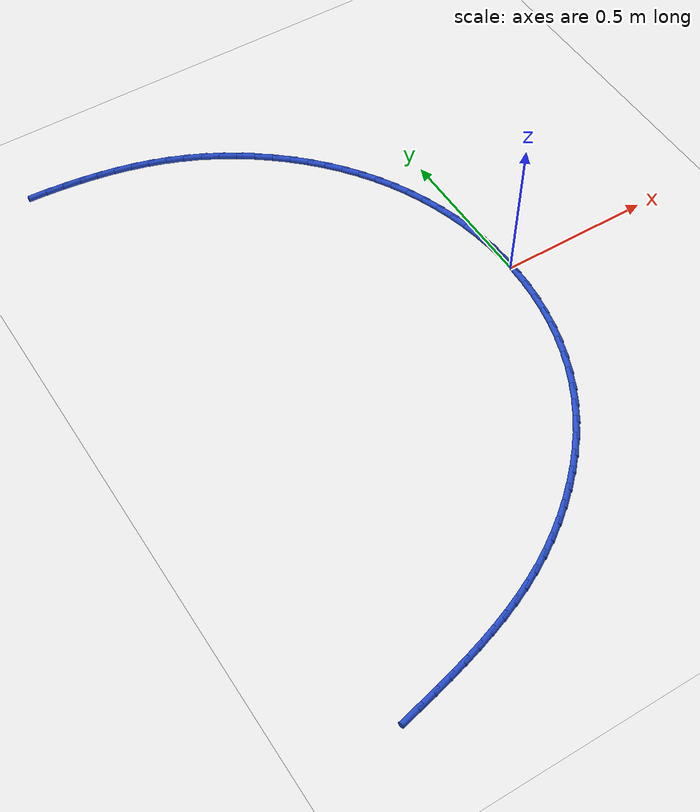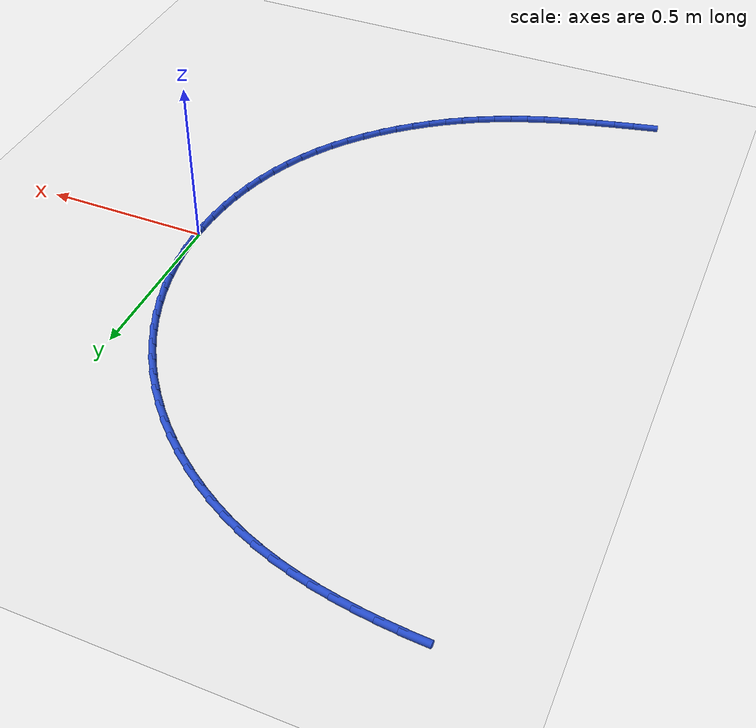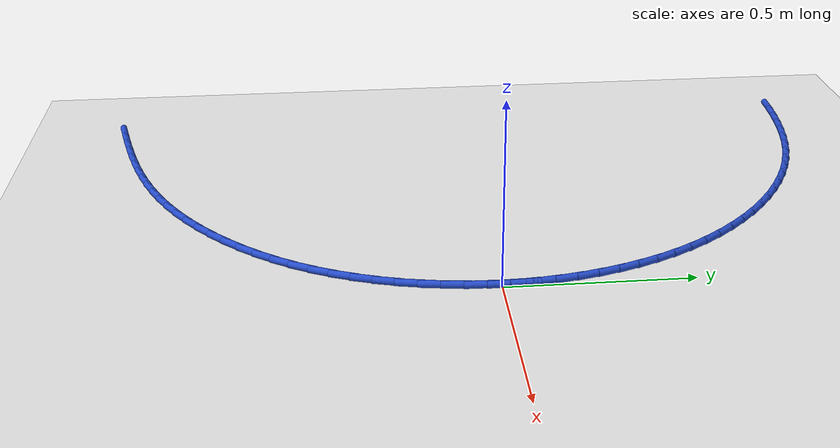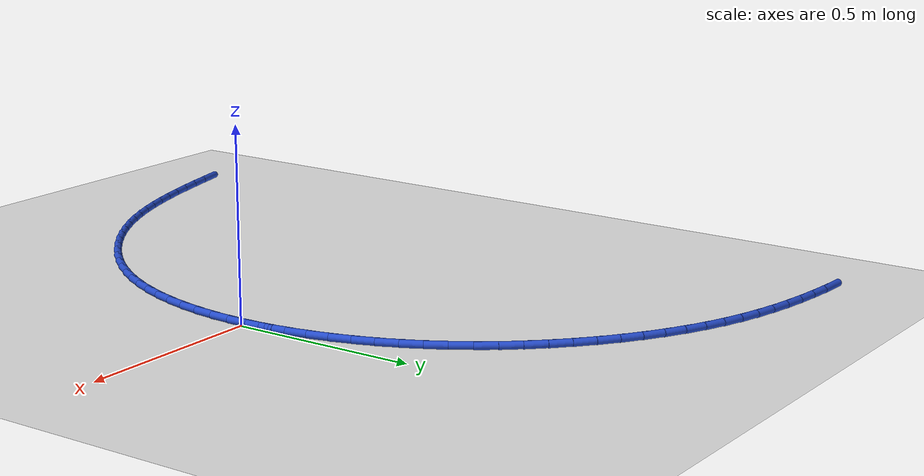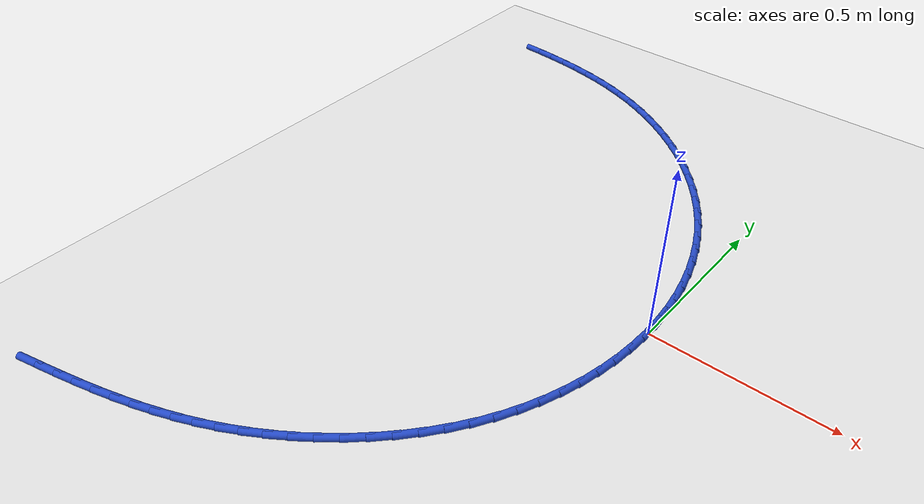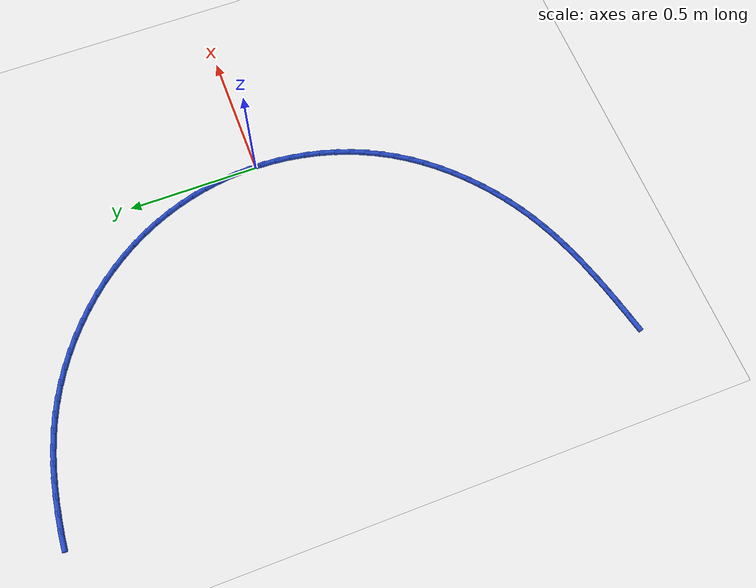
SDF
<sdf version="1.6">
 <world name="default">
  <model name="ground_plane">
   <static>1</static>
   <link name="link">
    <collision name="collision">
     <geometry><plane><normal>0 0 1</normal><size>100 100</size></plane></geometry>
     <surface><friction><ode><mu>100</mu><mu2>50</mu2></ode></friction></surface>
    </collision>
    <visual name="visual">
     <cast_shadows>0</cast_shadows>
     <geometry><plane><normal>0 0 1</normal><size>100 100</size></plane></geometry>
     <material>
      <script><uri>file://media/materials/scripts/gazebo.material</uri><name>Gazebo/WhiteGlow</name></script>
     </material>
    </visual>
   </link>
  </model>
  <model name="line">
   <link name="link_0">
    <pose>5.204170427930421e-17 -1.3877787807814457e-17 0.01 0 1.57 -1.5394374286520451</pose>
    <collision name="collision">
     <geometry><cylinder><radius>0.01</radius><length>0.08</length></cylinder></geometry>
    </collision>
    <visual name="visual">
     <material>
      <script><name>Gazebo/Blue</name><uri>file://media/materials/scripts/gazebo.material</uri></script>
     </material>
     <geometry><cylinder><radius>0.01</radius><length>0.08</length></cylinder></geometry>
    </visual>
   </link>
   <link name="link_1">
    <pose>-0.0018186807022035135 0.05797667070847228 0.01 0 1.57 -1.481972959516148</pose>
    <collision name="collision">
     <geometry><cylinder><radius>0.01</radius><length>0.08</length></cylinder></geometry>
    </collision>
    <visual name="visual">
     <material>
      <script><name>Gazebo/Blue</name><uri>file://media/materials/scripts/gazebo.material</uri></script>
     </material>
     <geometry><cylinder><radius>0.01</radius><length>0.08</length></cylinder></geometry>
    </visual>
   </link>
   <link name="link_2">
    <pose>-0.006962711286975514 0.11573731999239545 0.01 0 1.57 -1.4247411741420257</pose>
    <collision name="collision">
     <geometry><cylinder><radius>0.01</radius><length>0.08</length></cylinder></geometry>
    </collision>
    <visual name="visual">
     <material>
      <script><name>Gazebo/Blue</name><uri>file://media/materials/scripts/gazebo.material</uri></script>
     </material>
     <geometry><cylinder><radius>0.01</radius><length>0.08</length></cylinder></geometry>
    </visual>
   </link>
   <link name="link_3">
    <pose>-0.01540180927578869 0.17310609067723726 0.01 0 1.57 -1.3675897839022428</pose>
    <collision name="collision">
     <geometry><cylinder><radius>0.01</radius><length>0.08</length></cylinder></geometry>
    </collision>
    <visual name="visual">
     <material>
      <script><name>Gazebo/Blue</name><uri>file://media/materials/scripts/gazebo.material</uri></script>
     </material>
     <geometry><cylinder><radius>0.01</radius><length>0.08</length></cylinder></geometry>
    </visual>
   </link>
   <link name="link_4">
    <pose>-0.027105692190115768 0.2299071255884651 0.01 0 1.57 -1.3103649153242563</pose>
    <collision name="collision">
     <geometry><cylinder><radius>0.01</radius><length>0.08</length></cylinder></geometry>
    </collision>
    <visual name="visual">
     <material>
      <script><name>Gazebo/Blue</name><uri>file://media/materials/scripts/gazebo.material</uri></script>
     </material>
     <geometry><cylinder><radius>0.01</radius><length>0.08</length></cylinder></geometry>
    </visual>
   </link>
   <link name="link_5">
    <pose>-0.0420440775514295 0.2859645675515467 0.01 0 1.57 -1.2529147282498478</pose>
    <collision name="collision">
     <geometry><cylinder><radius>0.01</radius><length>0.08</length></cylinder></geometry>
    </collision>
    <visual name="visual">
     <material>
      <script><name>Gazebo/Blue</name><uri>file://media/materials/scripts/gazebo.material</uri></script>
     </material>
     <geometry><cylinder><radius>0.01</radius><length>0.08</length></cylinder></geometry>
    </visual>
   </link>
   <link name="link_6">
    <pose>-0.060186682881202616 0.3411025593919495 0.01 0 1.57 -1.195093082823694</pose>
    <collision name="collision">
     <geometry><cylinder><radius>0.01</radius><length>0.08</length></cylinder></geometry>
    </collision>
    <visual name="visual">
     <material>
      <script><name>Gazebo/Blue</name><uri>file://media/materials/scripts/gazebo.material</uri></script>
     </material>
     <geometry><cylinder><radius>0.01</radius><length>0.08</length></cylinder></geometry>
    </visual>
   </link>
   <link name="link_7">
    <pose>-0.08150322570090784 0.3951452439351412 0.01 0 1.57 -1.1367633532229624</pose>
    <collision name="collision">
     <geometry><cylinder><radius>0.01</radius><length>0.08</length></cylinder></geometry>
    </collision>
    <visual name="visual">
     <material>
      <script><name>Gazebo/Blue</name><uri>file://media/materials/scripts/gazebo.material</uri></script>
     </material>
     <geometry><cylinder><radius>0.01</radius><length>0.08</length></cylinder></geometry>
    </visual>
   </link>
   <link name="link_8">
    <pose>-0.10596342353201789 0.44791676400658914 0.01 0 1.57 -1.0778024611135761</pose>
    <collision name="collision">
     <geometry><cylinder><radius>0.01</radius><length>0.08</length></cylinder></geometry>
    </collision>
    <visual name="visual">
     <material>
      <script><name>Gazebo/Blue</name><uri>file://media/materials/scripts/gazebo.material</uri></script>
     </material>
     <geometry><cylinder><radius>0.01</radius><length>0.08</length></cylinder></geometry>
    </visual>
   </link>
   <link name="link_9">
    <pose>-0.13353699389600557 0.49924126243176137 0.01 0 1.57 -1.018523775019367</pose>
    <collision name="collision">
     <geometry><cylinder><radius>0.01</radius><length>0.08</length></cylinder></geometry>
    </collision>
    <visual name="visual">
     <material>
      <script><name>Gazebo/Blue</name><uri>file://media/materials/scripts/gazebo.material</uri></script>
     </material>
     <geometry><cylinder><radius>0.01</radius><length>0.08</length></cylinder></geometry>
    </visual>
   </link>
   <link name="link_10">
    <pose>-0.1641700000675561 0.5489510931473054 0.01 0 1.57 -0.9605432715044538</pose>
    <collision name="collision">
     <geometry><cylinder><radius>0.01</radius><length>0.08</length></cylinder></geometry>
    </collision>
    <visual name="visual">
     <material>
      <script><name>Gazebo/Blue</name><uri>file://media/materials/scripts/gazebo.material</uri></script>
     </material>
     <geometry><cylinder><radius>0.01</radius><length>0.08</length></cylinder></geometry>
    </visual>
   </link>
   <link name="link_11">
    <pose>-0.19770952811993 0.5969129680980761 0.01 0 1.57 -0.9041033286173586</pose>
    <collision name="collision">
     <geometry><cylinder><radius>0.01</radius><length>0.08</length></cylinder></geometry>
    </collision>
    <visual name="visual">
     <material>
      <script><name>Gazebo/Blue</name><uri>file://media/materials/scripts/gazebo.material</uri></script>
     </material>
     <geometry><cylinder><radius>0.01</radius><length>0.08</length></cylinder></geometry>
    </visual>
   </link>
   <link name="link_12">
    <pose>-0.23397678000546246 0.643002584397495 0.01 0 1.57 -0.8489588671684987</pose>
    <collision name="collision">
     <geometry><cylinder><radius>0.01</radius><length>0.08</length></cylinder></geometry>
    </collision>
    <visual name="visual">
     <material>
      <script><name>Gazebo/Blue</name><uri>file://media/materials/scripts/gazebo.material</uri></script>
     </material>
     <geometry><cylinder><radius>0.01</radius><length>0.08</length></cylinder></geometry>
    </visual>
   </link>
   <link name="link_13">
    <pose>-0.2727929575926889 0.6870956391880738 0.01 0 1.57 -0.7948483328176554</pose>
    <collision name="collision">
     <geometry><cylinder><radius>0.01</radius><length>0.08</length></cylinder></geometry>
    </collision>
    <visual name="visual">
     <material>
      <script><name>Gazebo/Blue</name><uri>file://media/materials/scripts/gazebo.material</uri></script>
     </material>
     <geometry><cylinder><radius>0.01</radius><length>0.08</length></cylinder></geometry>
    </visual>
   </link>
   <link name="link_14">
    <pose>-0.31397926275014504 0.7290678296123244 0.01 0 1.57 -0.7414985064722543</pose>
    <collision name="collision">
     <geometry><cylinder><radius>0.01</radius><length>0.08</length></cylinder></geometry>
    </collision>
    <visual name="visual">
     <material>
      <script><name>Gazebo/Blue</name><uri>file://media/materials/scripts/gazebo.material</uri></script>
     </material>
     <geometry><cylinder><radius>0.01</radius><length>0.08</length></cylinder></geometry>
    </visual>
   </link>
   <link name="link_15">
    <pose>-0.3573568973463661 0.7687948528127575 0.01 0 1.57 -0.6886278424270654</pose>
    <collision name="collision">
     <geometry><cylinder><radius>0.01</radius><length>0.08</length></cylinder></geometry>
    </collision>
    <visual name="visual">
     <material>
      <script><name>Gazebo/Blue</name><uri>file://media/materials/scripts/gazebo.material</uri></script>
     </material>
     <geometry><cylinder><radius>0.01</radius><length>0.08</length></cylinder></geometry>
    </visual>
   </link>
   <link name="link_16">
    <pose>-0.4027470632498875 0.8061524059318849 0.01 0 1.57 -0.635948696421591</pose>
    <collision name="collision">
     <geometry><cylinder><radius>0.01</radius><length>0.08</length></cylinder></geometry>
    </collision>
    <visual name="visual">
     <material>
      <script><name>Gazebo/Blue</name><uri>file://media/materials/scripts/gazebo.material</uri></script>
     </material>
     <geometry><cylinder><radius>0.01</radius><length>0.08</length></cylinder></geometry>
    </visual>
   </link>
   <link name="link_17">
    <pose>-0.44997096232924505 0.8410161861122181 0.01 0 1.57 -0.5831688175208982</pose>
    <collision name="collision">
     <geometry><cylinder><radius>0.01</radius><length>0.08</length></cylinder></geometry>
    </collision>
    <visual name="visual">
     <material>
      <script><name>Gazebo/Blue</name><uri>file://media/materials/scripts/gazebo.material</uri></script>
     </material>
     <geometry><cylinder><radius>0.01</radius><length>0.08</length></cylinder></geometry>
    </visual>
   </link>
   <link name="link_18">
    <pose>-0.49884979645297384 0.8732618904962685 0.01 0 1.57 -0.5299924828810225</pose>
    <collision name="collision">
     <geometry><cylinder><radius>0.01</radius><length>0.08</length></cylinder></geometry>
    </collision>
    <visual name="visual">
     <material>
      <script><name>Gazebo/Blue</name><uri>file://media/materials/scripts/gazebo.material</uri></script>
     </material>
     <geometry><cylinder><radius>0.01</radius><length>0.08</length></cylinder></geometry>
    </visual>
   </link>
   <link name="link_19">
    <pose>-0.5492047674896097 0.9027652162265475 0.01 0 1.57 -0.4761216645481105</pose>
    <collision name="collision">
     <geometry><cylinder><radius>0.01</radius><length>0.08</length></cylinder></geometry>
    </collision>
    <visual name="visual">
     <material>
      <script><name>Gazebo/Blue</name><uri>file://media/materials/scripts/gazebo.material</uri></script>
     </material>
     <geometry><cylinder><radius>0.01</radius><length>0.08</length></cylinder></geometry>
    </visual>
   </link>
   <link name="link_20">
    <pose>-0.6008570773076878 0.9294018604455667 0.01 0 1.57 -0.4212576393686183</pose>
    <collision name="collision">
     <geometry><cylinder><radius>0.01</radius><length>0.08</length></cylinder></geometry>
    </collision>
    <visual name="visual">
     <material>
      <script><name>Gazebo/Blue</name><uri>file://media/materials/scripts/gazebo.material</uri></script>
     </material>
     <geometry><cylinder><radius>0.01</radius><length>0.08</length></cylinder></geometry>
    </visual>
   </link>
   <link name="link_21">
    <pose>-0.6536279277757437 0.9530475202958376 0.01 0 1.57 -0.3652707145330859</pose>
    <collision name="collision">
     <geometry><cylinder><radius>0.01</radius><length>0.08</length></cylinder></geometry>
    </collision>
    <visual name="visual">
     <material>
      <script><name>Gazebo/Blue</name><uri>file://media/materials/scripts/gazebo.material</uri></script>
     </material>
     <geometry><cylinder><radius>0.01</radius><length>0.08</length></cylinder></geometry>
    </visual>
   </link>
   <link name="link_22">
    <pose>-0.7073424417366676 0.9735896872448758 0.01 0 1.57 -0.31079966931266273</pose>
    <collision name="collision">
     <geometry><cylinder><radius>0.01</radius><length>0.08</length></cylinder></geometry>
    </collision>
    <visual name="visual">
     <material>
      <script><name>Gazebo/Blue</name><uri>file://media/materials/scripts/gazebo.material</uri></script>
     </material>
     <geometry><cylinder><radius>0.01</radius><length>0.08</length></cylinder></geometry>
    </visual>
   </link>
   <link name="link_23">
    <pose>-0.7618906466379307 0.9911110863759961 0.01 0 1.57 -0.26044121747063687</pose>
    <collision name="collision">
     <geometry><cylinder><radius>0.01</radius><length>0.08</length></cylinder></geometry>
    </collision>
    <visual name="visual">
     <material>
      <script><name>Gazebo/Blue</name><uri>file://media/materials/scripts/gazebo.material</uri></script>
     </material>
     <geometry><cylinder><radius>0.01</radius><length>0.08</length></cylinder></geometry>
    </visual>
   </link>
   <link name="link_24">
    <pose>-0.817215927897143 1.0058549440113556 0.01 0 1.57 -0.21457352523984652</pose>
    <collision name="collision">
     <geometry><cylinder><radius>0.01</radius><length>0.08</length></cylinder></geometry>
    </collision>
    <visual name="visual">
     <material>
      <script><name>Gazebo/Blue</name><uri>file://media/materials/scripts/gazebo.material</uri></script>
     </material>
     <geometry><cylinder><radius>0.01</radius><length>0.08</length></cylinder></geometry>
    </visual>
   </link>
   <link name="link_25">
    <pose>-0.873263254763406 1.0180692506520312 0.01 0 1.57 -0.17337801897846622</pose>
    <collision name="collision">
     <geometry><cylinder><radius>0.01</radius><length>0.08</length></cylinder></geometry>
    </collision>
    <visual name="visual">
     <material>
      <script><name>Gazebo/Blue</name><uri>file://media/materials/scripts/gazebo.material</uri></script>
     </material>
     <geometry><cylinder><radius>0.01</radius><length>0.08</length></cylinder></geometry>
    </visual>
   </link>
   <link name="link_26">
    <pose>-0.9299775964858213 1.0280019967990999 0.01 0 1.57 -0.13693088110518362</pose>
    <collision name="collision">
     <geometry><cylinder><radius>0.01</radius><length>0.08</length></cylinder></geometry>
    </collision>
    <visual name="visual">
     <material>
      <script><name>Gazebo/Blue</name><uri>file://media/materials/scripts/gazebo.material</uri></script>
     </material>
     <geometry><cylinder><radius>0.01</radius><length>0.08</length></cylinder></geometry>
    </visual>
   </link>
   <link name="link_27">
    <pose>-0.9873039223134907 1.0359011729536387 0.01 0 1.57 -0.10522925426274267</pose>
    <collision name="collision">
     <geometry><cylinder><radius>0.01</radius><length>0.08</length></cylinder></geometry>
    </collision>
    <visual name="visual">
     <material>
      <script><name>Gazebo/Blue</name><uri>file://media/materials/scripts/gazebo.material</uri></script>
     </material>
     <geometry><cylinder><radius>0.01</radius><length>0.08</length></cylinder></geometry>
    </visual>
   </link>
   <link name="link_28">
    <pose>-1.045187201495516 1.0420147696167243 0.01 0 1.57 -0.07761290671716273</pose>
    <collision name="collision">
     <geometry><cylinder><radius>0.01</radius><length>0.08</length></cylinder></geometry>
    </collision>
    <visual name="visual">
     <material>
      <script><name>Gazebo/Blue</name><uri>file://media/materials/scripts/gazebo.material</uri></script>
     </material>
     <geometry><cylinder><radius>0.01</radius><length>0.08</length></cylinder></geometry>
    </visual>
   </link>
   <link name="link_29">
    <pose>-1.1035589184288304 1.046554286893035 0.01 0 1.57 -0.04840252344028162</pose>
    <collision name="collision">
     <geometry><cylinder><radius>0.01</radius><length>0.08</length></cylinder></geometry>
    </collision>
    <visual name="visual">
     <material>
      <script><name>Gazebo/Blue</name><uri>file://media/materials/scripts/gazebo.material</uri></script>
     </material>
     <geometry><cylinder><radius>0.01</radius><length>0.08</length></cylinder></geometry>
    </visual>
   </link>
   <link name="link_91">
    <pose>-1.0809429342306796 -1.0770117836687145 0.01 0 1.57 0.23120318898151576</pose>
    <collision name="collision">
     <geometry><cylinder><radius>0.01</radius><length>0.08</length></cylinder></geometry>
    </collision>
    <visual name="visual">
     <material>
      <script><name>Gazebo/Blue</name><uri>file://media/materials/scripts/gazebo.material</uri></script>
     </material>
     <geometry><cylinder><radius>0.01</radius><length>0.08</length></cylinder></geometry>
    </visual>
   </link>
   <link name="link_92">
    <pose>-1.0216067740963162 -1.0630432877887095 0.01 0 1.57 0.2422836880192395</pose>
    <collision name="collision">
     <geometry><cylinder><radius>0.01</radius><length>0.08</length></cylinder></geometry>
    </collision>
    <visual name="visual">
     <material>
      <script><name>Gazebo/Blue</name><uri>file://media/materials/scripts/gazebo.material</uri></script>
     </material>
     <geometry><cylinder><radius>0.01</radius><length>0.08</length></cylinder></geometry>
    </visual>
   </link>
   <link name="link_93">
    <pose>-0.9638118616893621 -1.0487599392548212 0.01 0 1.57 0.2576470388181454</pose>
    <collision name="collision">
     <geometry><cylinder><radius>0.01</radius><length>0.08</length></cylinder></geometry>
    </collision>
    <visual name="visual">
     <material>
      <script><name>Gazebo/Blue</name><uri>file://media/materials/scripts/gazebo.material</uri></script>
     </material>
     <geometry><cylinder><radius>0.01</radius><length>0.08</length></cylinder></geometry>
    </visual>
   </link>
   <link name="link_94">
    <pose>-0.9074706757329133 -1.0339138317375078 0.01 0 1.57 0.2774524609095965</pose>
    <collision name="collision">
     <geometry><cylinder><radius>0.01</radius><length>0.08</length></cylinder></geometry>
    </collision>
    <visual name="visual">
     <material>
      <script><name>Gazebo/Blue</name><uri>file://media/materials/scripts/gazebo.material</uri></script>
     </material>
     <geometry><cylinder><radius>0.01</radius><length>0.08</length></cylinder></geometry>
    </visual>
   </link>
   <link name="link_95">
    <pose>-0.8524956949500648 -1.0182570589072277 0.01 0 1.57 0.30178594692789307</pose>
    <collision name="collision">
     <geometry><cylinder><radius>0.01</radius><length>0.08</length></cylinder></geometry>
    </collision>
    <visual name="visual">
     <material>
      <script><name>Gazebo/Blue</name><uri>file://media/materials/scripts/gazebo.material</uri></script>
     </material>
     <geometry><cylinder><radius>0.01</radius><length>0.08</length></cylinder></geometry>
    </visual>
   </link>
   <link name="link_96">
    <pose>-0.7987993980639108 -1.001541714434438 0.01 0 1.57 0.33063922158750814</pose>
    <collision name="collision">
     <geometry><cylinder><radius>0.01</radius><length>0.08</length></cylinder></geometry>
    </collision>
    <visual name="visual">
     <material>
      <script><name>Gazebo/Blue</name><uri>file://media/materials/scripts/gazebo.material</uri></script>
     </material>
     <geometry><cylinder><radius>0.01</radius><length>0.08</length></cylinder></geometry>
    </visual>
   </link>
   <link name="link_97">
    <pose>-0.746294263797548 -0.9835198919895972 0.01 0 1.57 0.3638886668575138</pose>
    <collision name="collision">
     <geometry><cylinder><radius>0.01</radius><length>0.08</length></cylinder></geometry>
    </collision>
    <visual name="visual">
     <material>
      <script><name>Gazebo/Blue</name><uri>file://media/materials/scripts/gazebo.material</uri></script>
     </material>
     <geometry><cylinder><radius>0.01</radius><length>0.08</length></cylinder></geometry>
    </visual>
   </link>
   <link name="link_98">
    <pose>-0.6948927708740714 -0.9639436852431631 0.01 0 1.57 0.4012773171829837</pose>
    <collision name="collision">
     <geometry><cylinder><radius>0.01</radius><length>0.08</length></cylinder></geometry>
    </collision>
    <visual name="visual">
     <material>
      <script><name>Gazebo/Blue</name><uri>file://media/materials/scripts/gazebo.material</uri></script>
     </material>
     <geometry><cylinder><radius>0.01</radius><length>0.08</length></cylinder></geometry>
    </visual>
   </link>
   <link name="link_99">
    <pose>-0.644507398016576 -0.9425651878655938 0.01 0 1.57 0.442403970661698</pose>
    <collision name="collision">
     <geometry><cylinder><radius>0.01</radius><length>0.08</length></cylinder></geometry>
    </collision>
    <visual name="visual">
     <material>
      <script><name>Gazebo/Blue</name><uri>file://media/materials/scripts/gazebo.material</uri></script>
     </material>
     <geometry><cylinder><radius>0.01</radius><length>0.08</length></cylinder></geometry>
    </visual>
   </link>
   <link name="link_100">
    <pose>-0.5950506239481566 -0.919136493527347 0.01 0 1.57 0.48672370448362695</pose>
    <collision name="collision">
     <geometry><cylinder><radius>0.01</radius><length>0.08</length></cylinder></geometry>
    </collision>
    <visual name="visual">
     <material>
      <script><name>Gazebo/Blue</name><uri>file://media/materials/scripts/gazebo.material</uri></script>
     </material>
     <geometry><cylinder><radius>0.01</radius><length>0.08</length></cylinder></geometry>
    </visual>
   </link>
   <link name="link_101">
    <pose>-0.5464349273919094 -0.893409695898881 0.01 0 1.57 0.5335631185853906</pose>
    <collision name="collision">
     <geometry><cylinder><radius>0.01</radius><length>0.08</length></cylinder></geometry>
    </collision>
    <visual name="visual">
     <material>
      <script><name>Gazebo/Blue</name><uri>file://media/materials/scripts/gazebo.material</uri></script>
     </material>
     <geometry><cylinder><radius>0.01</radius><length>0.08</length></cylinder></geometry>
    </visual>
   </link>
   <link name="link_102">
    <pose>-0.49857278877197486 -0.8651368902705681 0.01 0 1.57 0.5818525004234139</pose>
    <collision name="collision">
     <geometry><cylinder><radius>0.01</radius><length>0.08</length></cylinder></geometry>
    </collision>
    <visual name="visual">
     <material>
      <script><name>Gazebo/Blue</name><uri>file://media/materials/scripts/gazebo.material</uri></script>
     </material>
     <geometry><cylinder><radius>0.01</radius><length>0.08</length></cylinder></geometry>
    </visual>
   </link>
   <link name="link_103">
    <pose>-0.451445318135892 -0.8341355282899278 0.01 0 1.57 0.6302407141450401</pose>
    <collision name="collision">
     <geometry><cylinder><radius>0.01</radius><length>0.08</length></cylinder></geometry>
    </collision>
    <visual name="visual">
     <material>
      <script><name>Gazebo/Blue</name><uri>file://media/materials/scripts/gazebo.material</uri></script>
     </material>
     <geometry><cylinder><radius>0.01</radius><length>0.08</length></cylinder></geometry>
    </visual>
   </link>
   <link name="link_104">
    <pose>-0.4052845162611202 -0.8004619861874431 0.01 0 1.57 0.6789485166976923</pose>
    <collision name="collision">
     <geometry><cylinder><radius>0.01</radius><length>0.08</length></cylinder></geometry>
    </collision>
    <visual name="visual">
     <material>
      <script><name>Gazebo/Blue</name><uri>file://media/materials/scripts/gazebo.material</uri></script>
     </material>
     <geometry><cylinder><radius>0.01</radius><length>0.08</length></cylinder></geometry>
    </visual>
   </link>
   <link name="link_105">
    <pose>-0.36037970009672293 -0.7642272226901357 0.01 0 1.57 0.7284846971511348</pose>
    <collision name="collision">
     <geometry><cylinder><radius>0.01</radius><length>0.08</length></cylinder></geometry>
    </collision>
    <visual name="visual">
     <material>
      <script><name>Gazebo/Blue</name><uri>file://media/materials/scripts/gazebo.material</uri></script>
     </material>
     <geometry><cylinder><radius>0.01</radius><length>0.08</length></cylinder></geometry>
    </visual>
   </link>
   <link name="link_106">
    <pose>-0.31702018659176157 -0.725542196525026 0.01 0 1.57 0.7793344158392602</pose>
    <collision name="collision">
     <geometry><cylinder><radius>0.01</radius><length>0.08</length></cylinder></geometry>
    </collision>
    <visual name="visual">
     <material>
      <script><name>Gazebo/Blue</name><uri>file://media/materials/scripts/gazebo.material</uri></script>
     </material>
     <geometry><cylinder><radius>0.01</radius><length>0.08</length></cylinder></geometry>
    </visual>
   </link>
   <link name="link_107">
    <pose>-0.2754952926952985 -0.684517866419135 0.01 0 1.57 0.8319651843540792</pose>
    <collision name="collision">
     <geometry><cylinder><radius>0.01</radius><length>0.08</length></cylinder></geometry>
    </collision>
    <visual name="visual">
     <material>
      <script><name>Gazebo/Blue</name><uri>file://media/materials/scripts/gazebo.material</uri></script>
     </material>
     <geometry><cylinder><radius>0.01</radius><length>0.08</length></cylinder></geometry>
    </visual>
   </link>
   <link name="link_108">
    <pose>-0.23609433535639507 -0.641265191099483 0.01 0 1.57 0.8868286945370996</pose>
    <collision name="collision">
     <geometry><cylinder><radius>0.01</radius><length>0.08</length></cylinder></geometry>
    </collision>
    <visual name="visual">
     <material>
      <script><name>Gazebo/Blue</name><uri>file://media/materials/scripts/gazebo.material</uri></script>
     </material>
     <geometry><cylinder><radius>0.01</radius><length>0.08</length></cylinder></geometry>
    </visual>
   </link>
   <link name="link_109">
    <pose>-0.1991066315241147 -0.5958951292930921 0.01 0 1.57 0.9443578389375754</pose>
    <collision name="collision">
     <geometry><cylinder><radius>0.01</radius><length>0.08</length></cylinder></geometry>
    </collision>
    <visual name="visual">
     <material>
      <script><name>Gazebo/Blue</name><uri>file://media/materials/scripts/gazebo.material</uri></script>
     </material>
     <geometry><cylinder><radius>0.01</radius><length>0.08</length></cylinder></geometry>
    </visual>
   </link>
   <link name="link_110">
    <pose>-0.1648214981475188 -0.5485186397269822 0.01 0 1.57 1.0049579933473975</pose>
    <collision name="collision">
     <geometry><cylinder><radius>0.01</radius><length>0.08</length></cylinder></geometry>
    </collision>
    <visual name="visual">
     <material>
      <script><name>Gazebo/Blue</name><uri>file://media/materials/scripts/gazebo.material</uri></script>
     </material>
     <geometry><cylinder><radius>0.01</radius><length>0.08</length></cylinder></geometry>
    </visual>
   </link>
   <link name="link_111">
    <pose>-0.13352825201735316 -0.4992466811798769 0.01 0 1.57 1.068123580759863</pose>
    <collision name="collision">
     <geometry><cylinder><radius>0.01</radius><length>0.08</length></cylinder></geometry>
    </collision>
    <visual name="visual">
     <material>
      <script><name>Gazebo/Blue</name><uri>file://media/materials/scripts/gazebo.material</uri></script>
     </material>
     <geometry><cylinder><radius>0.01</radius><length>0.08</length></cylinder></geometry>
    </visual>
   </link>
   <link name="link_112">
    <pose>-0.10546730907094456 -0.4482061822111451 0.01 0 1.57 1.1307613170521316</pose>
    <collision name="collision">
     <geometry><cylinder><radius>0.01</radius><length>0.08</length></cylinder></geometry>
    </collision>
    <visual name="visual">
     <material>
      <script><name>Gazebo/Blue</name><uri>file://media/materials/scripts/gazebo.material</uri></script>
     </material>
     <geometry><cylinder><radius>0.01</radius><length>0.08</length></cylinder></geometry>
    </visual>
   </link>
   <link name="link_113">
    <pose>-0.08069209532880364 -0.3955851375527484 0.01 0 1.57 1.1921888374771272</pose>
    <collision name="collision">
     <geometry><cylinder><radius>0.01</radius><length>0.08</length></cylinder></geometry>
    </collision>
    <visual name="visual">
     <material>
      <script><name>Gazebo/Blue</name><uri>file://media/materials/scripts/gazebo.material</uri></script>
     </material>
     <geometry><cylinder><radius>0.01</radius><length>0.08</length></cylinder></geometry>
    </visual>
   </link>
   <link name="link_114">
    <pose>-0.05921134868553359 -0.34158613594714643 0.01 0 1.57 1.2525391854404937</pose>
    <collision name="collision">
     <geometry><cylinder><radius>0.01</radius><length>0.08</length></cylinder></geometry>
    </collision>
    <visual name="visual">
     <material>
      <script><name>Gazebo/Blue</name><uri>file://media/materials/scripts/gazebo.material</uri></script>
     </material>
     <geometry><cylinder><radius>0.01</radius><length>0.08</length></cylinder></geometry>
    </visual>
   </link>
   <link name="link_115">
    <pose>-0.041033807035737745 -0.286411766136799 0.01 0 1.57 1.3119735380308202</pose>
    <collision name="collision">
     <geometry><cylinder><radius>0.01</radius><length>0.08</length></cylinder></geometry>
    </collision>
    <visual name="visual">
     <material>
      <script><name>Gazebo/Blue</name><uri>file://media/materials/scripts/gazebo.material</uri></script>
     </material>
     <geometry><cylinder><radius>0.01</radius><length>0.08</length></cylinder></geometry>
    </visual>
   </link>
   <link name="link_116">
    <pose>-0.0261682082740201 -0.23026461686416766 0.01 0 1.57 1.3706747902026755</pose>
    <collision name="collision">
     <geometry><cylinder><radius>0.01</radius><length>0.08</length></cylinder></geometry>
    </collision>
    <visual name="visual">
     <material>
      <script><name>Gazebo/Blue</name><uri>file://media/materials/scripts/gazebo.material</uri></script>
     </material>
     <geometry><cylinder><radius>0.01</radius><length>0.08</length></cylinder></geometry>
    </visual>
   </link>
   <link name="link_117">
    <pose>-0.01462329029498394 -0.17334727687171184 0.01 0 1.57 1.4288419108574182</pose>
    <collision name="collision">
     <geometry><cylinder><radius>0.01</radius><length>0.08</length></cylinder></geometry>
    </collision>
    <visual name="visual">
     <material>
      <script><name>Gazebo/Blue</name><uri>file://media/materials/scripts/gazebo.material</uri></script>
     </material>
     <geometry><cylinder><radius>0.01</radius><length>0.08</length></cylinder></geometry>
    </visual>
   </link>
   <link name="link_118">
    <pose>-0.006407790993232837 -0.115862334901892 0.01 0 1.57 1.4866850193212426</pose>
    <collision name="collision">
     <geometry><cylinder><radius>0.01</radius><length>0.08</length></cylinder></geometry>
    </collision>
    <visual name="visual">
     <material>
      <script><name>Gazebo/Blue</name><uri>file://media/materials/scripts/gazebo.material</uri></script>
     </material>
     <geometry><cylinder><radius>0.01</radius><length>0.08</length></cylinder></geometry>
    </visual>
   </link>
   <link name="link_119">
    <pose>-0.0015304482633702841 -0.05801237969716743 0.01 0 1.57 1.5444210364444193</pose>
    <collision name="collision">
     <geometry><cylinder><radius>0.01</radius><length>0.08</length></cylinder></geometry>
    </collision>
    <visual name="visual">
     <material>
      <script><name>Gazebo/Blue</name><uri>file://media/materials/scripts/gazebo.material</uri></script>
     </material>
     <geometry><cylinder><radius>0.01</radius><length>0.08</length></cylinder></geometry>
    </visual>
   </link>
   <link name="link_120">
    <pose>5.204170427930421e-17 -1.3877787807814457e-17 0.01 0 1.57 -1.539322949691683</pose>
    <collision name="collision">
     <geometry><cylinder><radius>0.01</radius><length>0.08</length></cylinder></geometry>
    </collision>
    <visual name="visual">
     <material>
      <script><name>Gazebo/Blue</name><uri>file://media/materials/scripts/gazebo.material</uri></script>
     </material>
     <geometry><cylinder><radius>0.01</radius><length>0.08</length></cylinder></geometry>
    </visual>
   </link>
   <link name="link_121">
    <pose>-0.0018251840977253006 0.05797221544715076 0.01 0 1.57 -1.539322949691683</pose>
    <collision name="collision">
     <geometry><cylinder><radius>0.01</radius><length>0.08</length></cylinder></geometry>
    </collision>
    <visual name="visual">
     <material>
      <script><name>Gazebo/Blue</name><uri>file://media/materials/scripts/gazebo.material</uri></script>
     </material>
     <geometry><cylinder><radius>0.01</radius><length>0.08</length></cylinder></geometry>
    </visual>
   </link>
  </model>
 </world>
</sdf>
